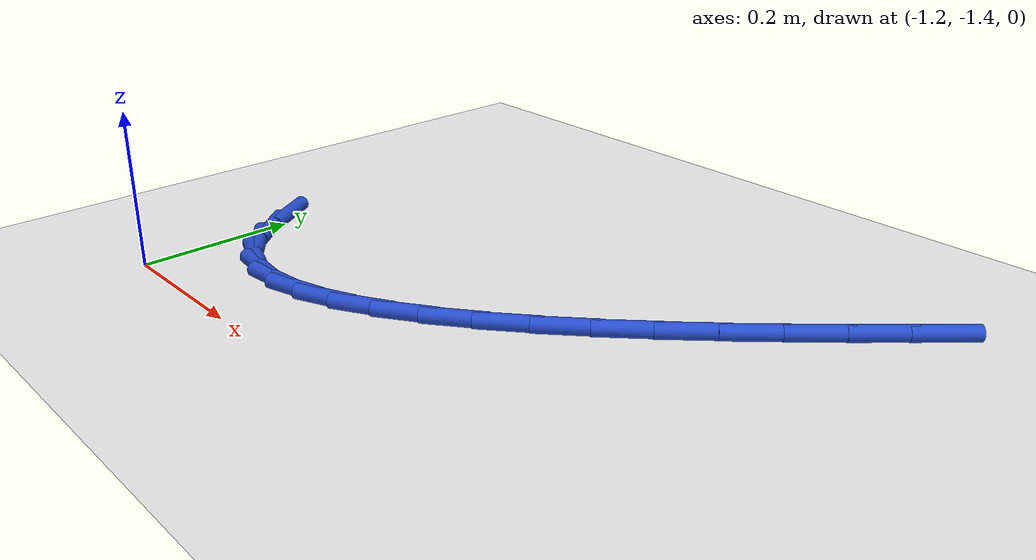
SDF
<sdf version="1.6">
 <world name="default">
  <model name="ground_plane">
   <static>1</static>
   <link name="link">
    <collision name="collision">
     <geometry><plane><normal>0 0 1</normal><size>100 100</size></plane></geometry>
     <surface><friction><ode><mu>100</mu><mu2>50</mu2></ode></friction></surface>
    </collision>
    <visual name="visual">
     <cast_shadows>0</cast_shadows>
     <geometry><plane><normal>0 0 1</normal><size>100 100</size></plane></geometry>
     <material>
      <script><uri>file://media/materials/scripts/gazebo.material</uri><name>Gazebo/WhiteGlow</name></script>
     </material>
    </visual>
   </link>
  </model>
  <model name="line">
   <link name="link_114">
    <pose>-1.2092705217178417 -1.1878884204281885 0.01 0 1.57 -1.0073268858358295</pose>
    <collision name="collision">
     <geometry><cylinder><radius>0.01</radius><length>0.08</length></cylinder></geometry>
    </collision>
    <visual name="visual">
     <material>
      <script><name>Gazebo/Blue</name><uri>file://media/materials/scripts/gazebo.material</uri></script>
     </material>
     <geometry><cylinder><radius>0.01</radius><length>0.08</length></cylinder></geometry>
    </visual>
   </link>
   <link name="link_115">
    <pose>-1.181185526860966 -1.2323412455784712 0.01 0 1.57 -0.8513490262752136</pose>
    <collision name="collision">
     <geometry><cylinder><radius>0.01</radius><length>0.08</length></cylinder></geometry>
    </collision>
    <visual name="visual">
     <material>
      <script><name>Gazebo/Blue</name><uri>file://media/materials/scripts/gazebo.material</uri></script>
     </material>
     <geometry><cylinder><radius>0.01</radius><length>0.08</length></cylinder></geometry>
    </visual>
   </link>
   <link name="link_116">
    <pose>-1.1503908689296052 -1.2674913328610982 0.01 0 1.57 -0.6142242826532149</pose>
    <collision name="collision">
     <geometry><cylinder><radius>0.01</radius><length>0.08</length></cylinder></geometry>
    </collision>
    <visual name="visual">
     <material>
      <script><name>Gazebo/Blue</name><uri>file://media/materials/scripts/gazebo.material</uri></script>
     </material>
     <geometry><cylinder><radius>0.01</radius><length>0.08</length></cylinder></geometry>
    </visual>
   </link>
   <link name="link_117">
    <pose>-1.1162144428067946 -1.2915934136157945 0.01 0 1.57 -0.35463280535004943</pose>
    <collision name="collision">
     <geometry><cylinder><radius>0.01</radius><length>0.08</length></cylinder></geometry>
    </collision>
    <visual name="visual">
     <material>
      <script><name>Gazebo/Blue</name><uri>file://media/materials/scripts/gazebo.material</uri></script>
     </material>
     <geometry><cylinder><radius>0.01</radius><length>0.08</length></cylinder></geometry>
    </visual>
   </link>
   <link name="link_118">
    <pose>-1.0789727970670278 -1.3053835307513546 0.01 0 1.57 -0.10567130152455836</pose>
    <collision name="collision">
     <geometry><cylinder><radius>0.01</radius><length>0.08</length></cylinder></geometry>
    </collision>
    <visual name="visual">
     <material>
      <script><name>Gazebo/Blue</name><uri>file://media/materials/scripts/gazebo.material</uri></script>
     </material>
     <geometry><cylinder><radius>0.01</radius><length>0.08</length></cylinder></geometry>
    </visual>
   </link>
   <link name="link_119">
    <pose>-1.0389929671451357 -1.3096240469770184 0.01 0 1.57 0.10684835022064121</pose>
    <collision name="collision">
     <geometry><cylinder><radius>0.01</radius><length>0.08</length></cylinder></geometry>
    </collision>
    <visual name="visual">
     <material>
      <script><name>Gazebo/Blue</name><uri>file://media/materials/scripts/gazebo.material</uri></script>
     </material>
     <geometry><cylinder><radius>0.01</radius><length>0.08</length></cylinder></geometry>
    </visual>
   </link>
   <link name="link_120">
    <pose>-0.9966019884759467 -1.305077325002027 0.01 0 1.57 0.27547919222609507</pose>
    <collision name="collision">
     <geometry><cylinder><radius>0.01</radius><length>0.08</length></cylinder></geometry>
    </collision>
    <visual name="visual">
     <material>
      <script><name>Gazebo/Blue</name><uri>file://media/materials/scripts/gazebo.material</uri></script>
     </material>
     <geometry><cylinder><radius>0.01</radius><length>0.08</length></cylinder></geometry>
    </visual>
   </link>
   <link name="link_121">
    <pose>-0.9521268964942907 -1.292505727535621 0.01 0 1.57 0.4052631043144759</pose>
    <collision name="collision">
     <geometry><cylinder><radius>0.01</radius><length>0.08</length></cylinder></geometry>
    </collision>
    <visual name="visual">
     <material>
      <script><name>Gazebo/Blue</name><uri>file://media/materials/scripts/gazebo.material</uri></script>
     </material>
     <geometry><cylinder><radius>0.01</radius><length>0.08</length></cylinder></geometry>
    </visual>
   </link>
   <link name="link_122">
    <pose>-0.9058947266349976 -1.272671617287041 0.01 0 1.57 0.5047748444825555</pose>
    <collision name="collision">
     <geometry><cylinder><radius>0.01</radius><length>0.08</length></cylinder></geometry>
    </collision>
    <visual name="visual">
     <material>
      <script><name>Gazebo/Blue</name><uri>file://media/materials/scripts/gazebo.material</uri></script>
     </material>
     <geometry><cylinder><radius>0.01</radius><length>0.08</length></cylinder></geometry>
    </visual>
   </link>
   <link name="link_123">
    <pose>-0.8582325143328958 -1.2463373569655274 0.01 0 1.57 0.5817572128554971</pose>
    <collision name="collision">
     <geometry><cylinder><radius>0.01</radius><length>0.08</length></cylinder></geometry>
    </collision>
    <visual name="visual">
     <material>
      <script><name>Gazebo/Blue</name><uri>file://media/materials/scripts/gazebo.material</uri></script>
     </material>
     <geometry><cylinder><radius>0.01</radius><length>0.08</length></cylinder></geometry>
    </visual>
   </link>
   <link name="link_124">
    <pose>-0.8094672950228154 -1.2142653092803208 0.01 0 1.57 0.6420989977718603</pose>
    <collision name="collision">
     <geometry><cylinder><radius>0.01</radius><length>0.08</length></cylinder></geometry>
    </collision>
    <visual name="visual">
     <material>
      <script><name>Gazebo/Blue</name><uri>file://media/materials/scripts/gazebo.material</uri></script>
     </material>
     <geometry><cylinder><radius>0.01</radius><length>0.08</length></cylinder></geometry>
    </visual>
   </link>
   <link name="link_125">
    <pose>-0.7599261041395866 -1.1772178369406623 0.01 0 1.57 0.6900223400651747</pose>
    <collision name="collision">
     <geometry><cylinder><radius>0.01</radius><length>0.08</length></cylinder></geometry>
    </collision>
    <visual name="visual">
     <material>
      <script><name>Gazebo/Blue</name><uri>file://media/materials/scripts/gazebo.material</uri></script>
     </material>
     <geometry><cylinder><radius>0.01</radius><length>0.08</length></cylinder></geometry>
    </visual>
   </link>
   <link name="link_126">
    <pose>-0.7099359771180371 -1.1359573026557916 0.01 0 1.57 0.7285032058393118</pose>
    <collision name="collision">
     <geometry><cylinder><radius>0.01</radius><length>0.08</length></cylinder></geometry>
    </collision>
    <visual name="visual">
     <material>
      <script><name>Gazebo/Blue</name><uri>file://media/materials/scripts/gazebo.material</uri></script>
     </material>
     <geometry><cylinder><radius>0.01</radius><length>0.08</length></cylinder></geometry>
    </visual>
   </link>
   <link name="link_127">
    <pose>-0.6598239493929984 -1.0912460691349504 0.01 0 1.57 0.7596365831891085</pose>
    <collision name="collision">
     <geometry><cylinder><radius>0.01</radius><length>0.08</length></cylinder></geometry>
    </collision>
    <visual name="visual">
     <material>
      <script><name>Gazebo/Blue</name><uri>file://media/materials/scripts/gazebo.material</uri></script>
     </material>
     <geometry><cylinder><radius>0.01</radius><length>0.08</length></cylinder></geometry>
    </visual>
   </link>
   <link name="link_128">
    <pose>-0.6099170563992977 -1.0438464990873784 0.01 0 1.57 0.7848998976880669</pose>
    <collision name="collision">
     <geometry><cylinder><radius>0.01</radius><length>0.08</length></cylinder></geometry>
    </collision>
    <visual name="visual">
     <material>
      <script><name>Gazebo/Blue</name><uri>file://media/materials/scripts/gazebo.material</uri></script>
     </material>
     <geometry><cylinder><radius>0.01</radius><length>0.08</length></cylinder></geometry>
    </visual>
   </link>
   <link name="link_129">
    <pose>-0.5605423335717656 -0.9945209552223159 0.01 0 1.57 0.8053303173721943</pose>
    <collision name="collision">
     <geometry><cylinder><radius>0.01</radius><length>0.08</length></cylinder></geometry>
    </collision>
    <visual name="visual">
     <material>
      <script><name>Gazebo/Blue</name><uri>file://media/materials/scripts/gazebo.material</uri></script>
     </material>
     <geometry><cylinder><radius>0.01</radius><length>0.08</length></cylinder></geometry>
    </visual>
   </link>
   <link name="link_130">
    <pose>-0.5120268163452324 -0.944031800249005 0.01 0 1.57 0.821639047072521</pose>
    <collision name="collision">
     <geometry><cylinder><radius>0.01</radius><length>0.08</length></cylinder></geometry>
    </collision>
    <visual name="visual">
     <material>
      <script><name>Gazebo/Blue</name><uri>file://media/materials/scripts/gazebo.material</uri></script>
     </material>
     <geometry><cylinder><radius>0.01</radius><length>0.08</length></cylinder></geometry>
    </visual>
   </link>
   <link name="link_131">
    <pose>-0.4646975401545258 -0.8931413968766848 0.01 0 1.57 0.834280000508176</pose>
    <collision name="collision">
     <geometry><cylinder><radius>0.01</radius><length>0.08</length></cylinder></geometry>
    </collision>
    <visual name="visual">
     <material>
      <script><name>Gazebo/Blue</name><uri>file://media/materials/scripts/gazebo.material</uri></script>
     </material>
     <geometry><cylinder><radius>0.01</radius><length>0.08</length></cylinder></geometry>
    </visual>
   </link>
   <link name="link_132">
    <pose>-0.41888154043447695 -0.8426121078145973 0.01 0 1.57 0.8434826462097962</pose>
    <collision name="collision">
     <geometry><cylinder><radius>0.01</radius><length>0.08</length></cylinder></geometry>
    </collision>
    <visual name="visual">
     <material>
      <script><name>Gazebo/Blue</name><uri>file://media/materials/scripts/gazebo.material</uri></script>
     </material>
     <geometry><cylinder><radius>0.01</radius><length>0.08</length></cylinder></geometry>
    </visual>
   </link>
  </model>
 </world>
</sdf>
